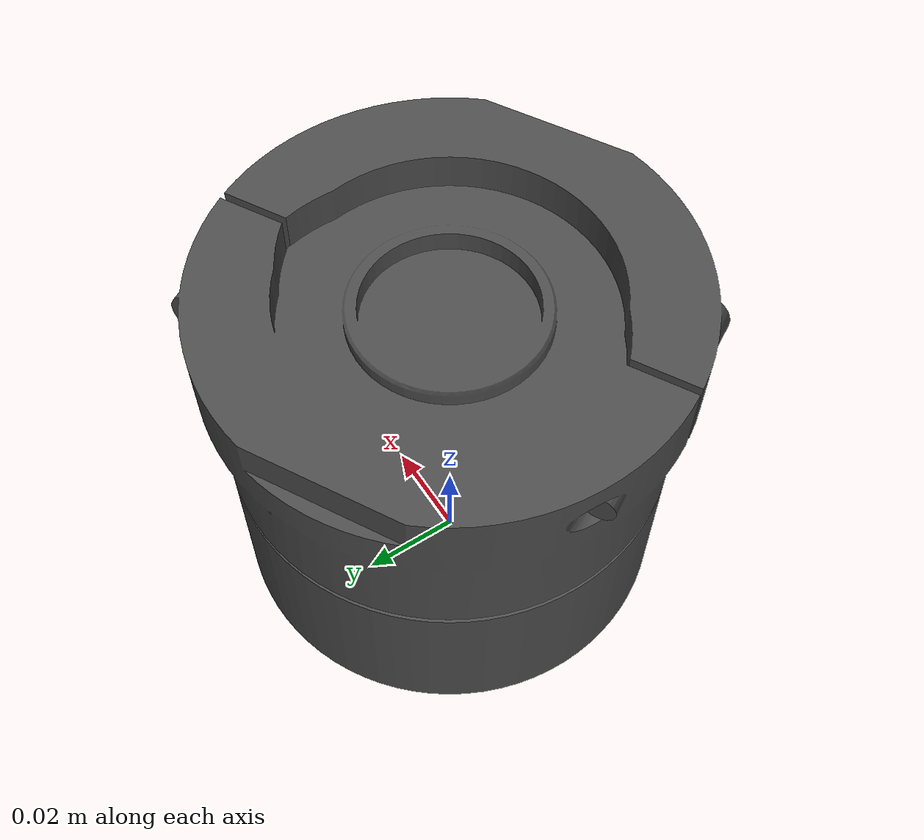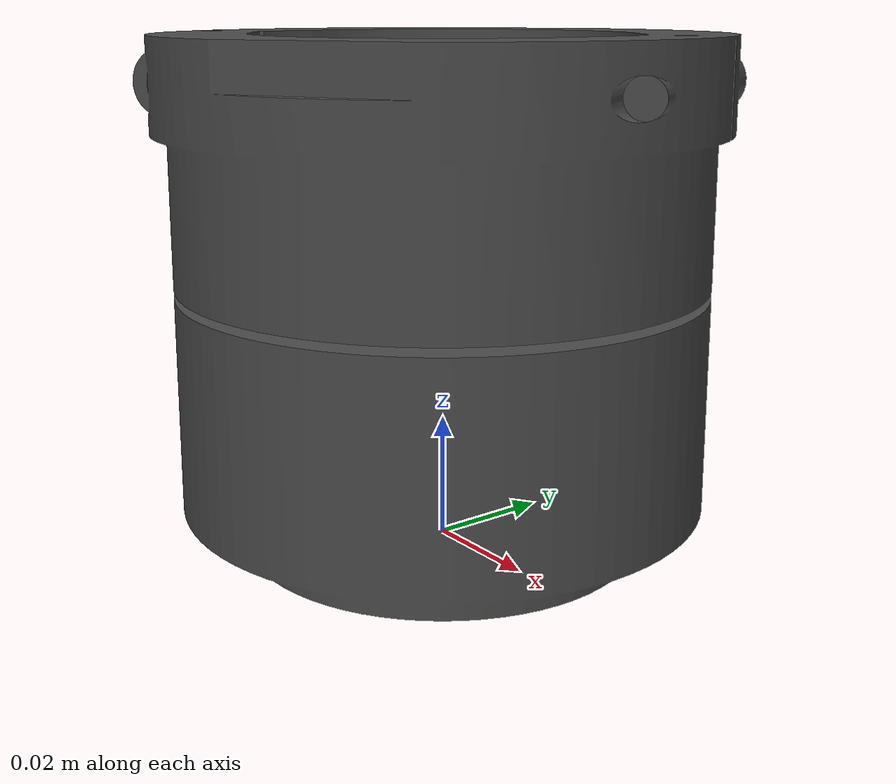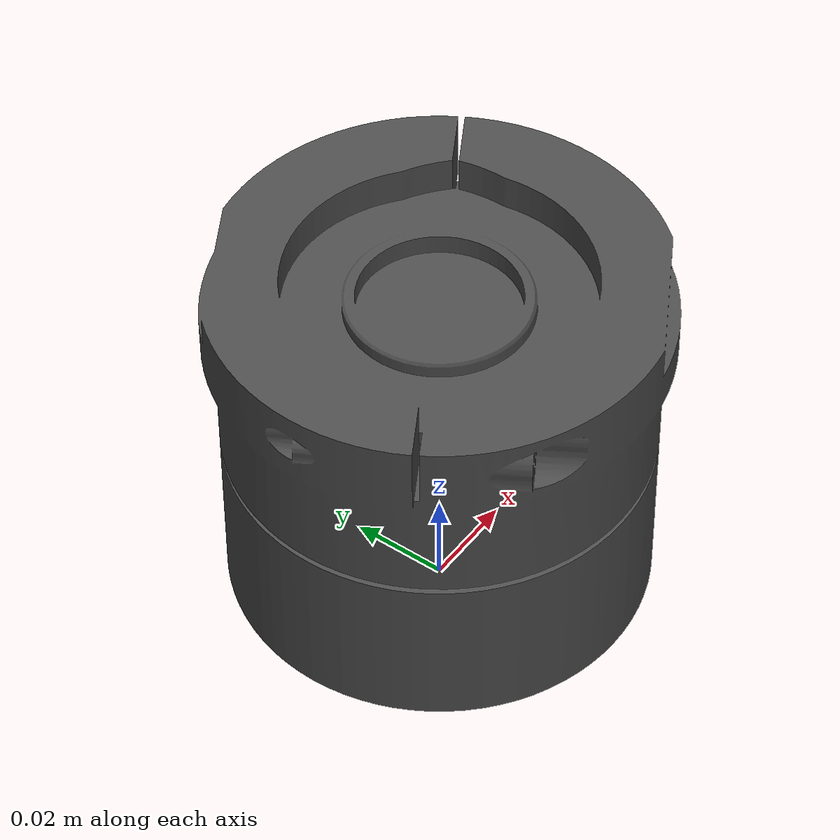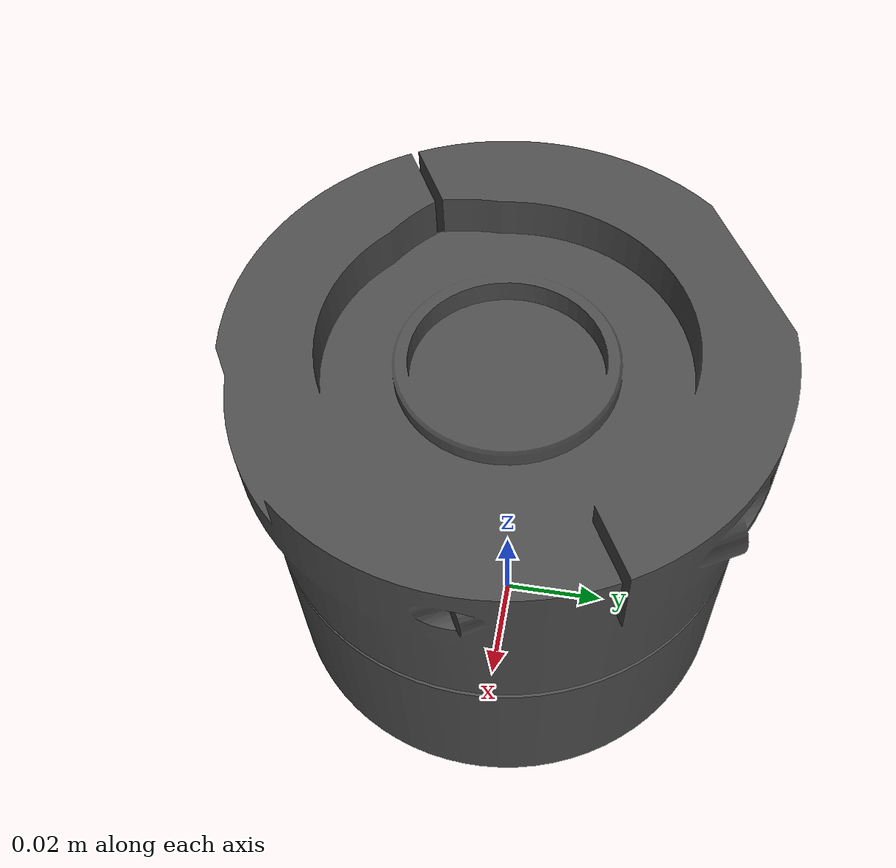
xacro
<?xml version="1.0"?>
<robot xmlns:xacro="http://www.ros.org/wiki/xacro"
       name="ati_ftm115" >

  <!-- ati ftm115 -->
  <xacro:include filename="$(find ati_force_torque)/description/urdf/ftm115.urdf.xacro" />

  <!-- Used for fixing sensor to Gazebo -->
  <link name="base_link"/>

  <!-- sensor -->
  <xacro:ati_ftm115 name="fts" parent="base_link">
      <origin xyz="0 0 0" rpy="0 0 0" />
  </xacro:ati_ftm115>

</robot>

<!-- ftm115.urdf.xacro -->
<robot xmlns:xacro="http://www.ros.org/wiki/xacro">
    <xacro:include filename="$(find ati_force_torque)/description/urdf/ftm115.transmission.xacro" />
    <xacro:include filename="$(find ati_force_torque)/description/urdf/ftm115.gazebo.xacro" />

    <xacro:macro name="ati_ftm115" params="parent name *origin">

        <joint name="${name}_base_joint" type="fixed">
            <xacro:insert_block name="origin" />
            <parent link="${parent}"/>
            <child link="${name}_base_link" />
        </joint>

        <link name="${name}_base_link">
            <xacro:default_inertial/>
            <visual>
                <origin xyz="0 0 0" rpy="0 0 0" />
                <geometry>
                <mesh filename="package://ati_force_torque/description/meshes/ftm115.stl" scale="0.001 0.001 0.001" />
                </geometry>
                <material name="Schunk/DarkGrey" />
            </visual>
            <collision>
                <origin xyz="0 0 0" rpy="0 0 ${-pi*3/4}" />
                <geometry>
                    <mesh filename="package://ati_force_torque/description/meshes/ftm115.stl" scale="0.001 0.001 0.001" />
                </geometry>
            </collision>
        </link>

        <joint name="${name}_reference_joint" type="continuous">
            <origin xyz="0 0 0" rpy="0.0 0.0 -2.216 " />
            <parent link="${name}_base_link"/>
            <child link="${name}_reference_link" />
        </joint>

        <link name="${name}_reference_link">
            <xacro:default_inertial/>
        </link>

        <xacro:fts_gazebo_ref_link parent="${name}"  />
        <xacro:fts_gazebo_base_link parent="${name}"  />
        <xacro:fts_transmission parent="${name}"  />

  </xacro:macro>

</robot>
